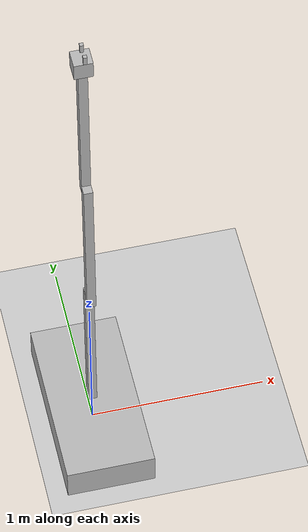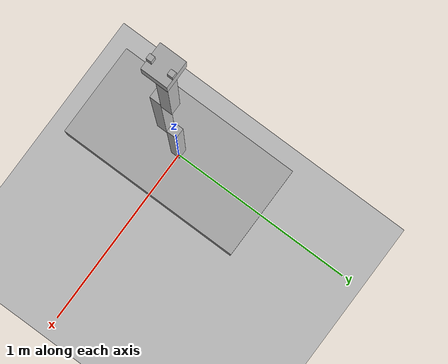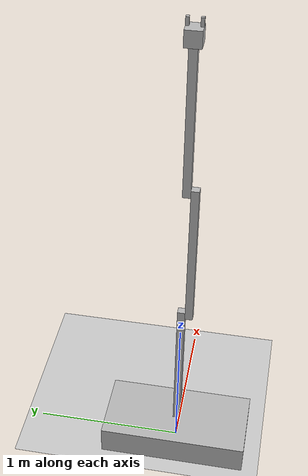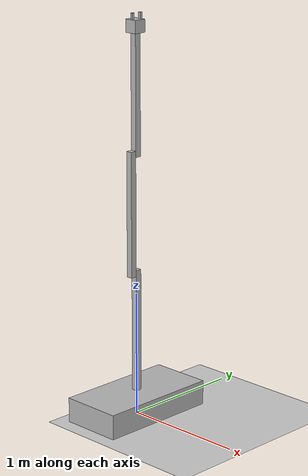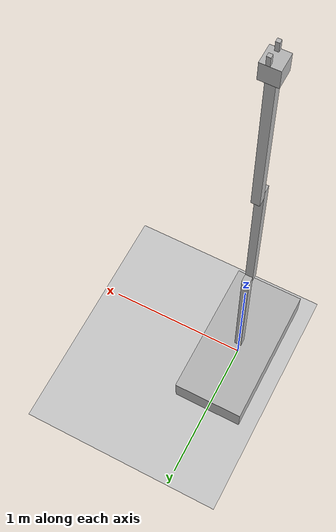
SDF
<sdf version="1.6">
 <world name="default">
  <light name="sun" type="directional">
   <pose>0 0 2 0 0 0</pose>
   <diffuse>0.8 0.8 0.8 1</diffuse>
   <specular>.1 .1 .1 1</specular>
   <attenuation>
    <range>1000</range>
    <linear>0.2</linear>
    <constant>0.8</constant>
    <quadratic>0.001</quadratic>
   </attenuation>
   <direction>-0.5 0.5 -1</direction>
  </light>
  <gravity>0 0 -9.8</gravity>
  <magnetic_field>6e-06 2.3e-05 -4.2e-05</magnetic_field>
  <atmosphere type="adiabatic"/>
  <physics name="default_physics" default="0" type="ode">
   <max_step_size>0.001</max_step_size>
   <real_time_factor>1</real_time_factor>
   <real_time_update_rate>1000</real_time_update_rate>
  </physics>
  <scene><ambient>0.4 0.4 0.4 1</ambient><background>0.7 0.7 0.7 1</background><shadows>1</shadows></scene>
  <spherical_coordinates>
   <surface_model>EARTH_WGS84</surface_model>
   <latitude_deg>0</latitude_deg>
   <longitude_deg>0</longitude_deg>
   <elevation>0</elevation>
   <heading_deg>0</heading_deg>
  </spherical_coordinates>
  <model name="ground_plane">
   <static>1</static>
   <link name="link">
    <collision name="collision">
     <geometry><plane><normal>0 0 1</normal><size>100 100</size></plane></geometry>
     <surface><friction><ode><mu>100</mu><mu2>50</mu2></ode></friction></surface>
    </collision>
    <visual name="visual">
     <cast_shadows>0</cast_shadows>
     <geometry><plane><normal>0 0 1</normal><size>100 100</size></plane></geometry>
     <material>
      <script><uri>file://media/materials/scripts/gazebo.material</uri><name>Gazebo/Grey</name></script>
     </material>
    </visual>
   </link>
  </model>
  <model name="mirobot">
   <self_collide>true</self_collide>
   <link name="base">
    <pose>0 0 0.10 0 0 0</pose>
    <collision name="baseC">
     <inertia><mass>20</mass></inertia>
     <geometry><box><size>0.5 1 0.2</size></box></geometry>
     <surface>
      <contact>
       <ode>
        <soft_cfm>0</soft_cfm>
        <soft_erp>0.2</soft_erp>
        <kp>1e+13</kp>
        <kd>1e+11</kd>
        <max_vel>-1</max_vel>
        <min_depth>0</min_depth>
       </ode>
      </contact>
     </surface>
    </collision>
    <visual name="baseV"><geometry><box><size>0.5 1 0.2</size></box></geometry></visual>
   </link>
   <link name="eslabon1">
    <pose>0 0 0.7 0 0 0</pose>
    <collision name="eslabon1C">
     <geometry><box><size>0.05 0.05 1</size></box></geometry>
     <surface>
      <contact>
       <ode>
        <soft_cfm>0</soft_cfm>
        <soft_erp>0.2</soft_erp>
        <kp>1e+13</kp>
        <kd>1e+11</kd>
        <max_vel>-1</max_vel>
        <min_depth>0</min_depth>
       </ode>
      </contact>
     </surface>
    </collision>
    <visual name="eslabon1C"><geometry><box><size>0.05 0.05 1</size></box></geometry></visual>
   </link>
   <joint name="eslabon1J" type="revolute">
    <pose>0 0 -0.5 0 0 0</pose>
    <parent>base</parent>
    <child>eslabon1</child>
    <axis>
     <dynamics>
      <damping>1</damping>
      <friction>0</friction>
      <spring_reference>0</spring_reference>
      <spring_stiffness>0</spring_stiffness>
     </dynamics>
     <limit><lower>-3.14</lower><upper>3.14</upper></limit>
     <xyz>0 0 1</xyz>
     <use_parent_model_frame>1</use_parent_model_frame>
    </axis>
   </joint>
   <link name="eslabon2">
    <pose>0.0 -0.05 1.65 0 0 0</pose>
    <collision name="eslabon2">
     <geometry><box><size>0.05 0.05 1</size></box></geometry>
     <surface>
      <contact>
       <ode>
        <soft_cfm>0</soft_cfm>
        <soft_erp>0.2</soft_erp>
        <kp>1e+13</kp>
        <kd>1e+11</kd>
        <max_vel>-1</max_vel>
        <min_depth>0</min_depth>
       </ode>
      </contact>
     </surface>
    </collision>
    <visual name="eslabon2"><geometry><box><size>0.05 0.05 1</size></box></geometry></visual>
   </link>
   <joint name="eslabon2J" type="revolute">
    <pose>0 0 -0.475 0 0 0</pose>
    <parent>eslabon1</parent>
    <child>eslabon2</child>
    <axis>
     <dynamics>
      <damping>1</damping>
      <friction>0</friction>
      <spring_reference>0</spring_reference>
      <spring_stiffness>0</spring_stiffness>
     </dynamics>
     <limit><lower>-3.14</lower><upper>3.14</upper></limit>
     <xyz>0 1 0</xyz>
     <use_parent_model_frame>1</use_parent_model_frame>
    </axis>
   </joint>
   <link name="eslabon3">
    <pose>0.0 0.0 2.60 0 0 0</pose>
    <collision name="eslabon3">
     <geometry><box><size>0.05 0.05 1</size></box></geometry>
     <surface>
      <contact>
       <ode>
        <soft_cfm>0</soft_cfm>
        <soft_erp>0.2</soft_erp>
        <kp>1e+13</kp>
        <kd>1e+11</kd>
        <max_vel>-1</max_vel>
        <min_depth>0</min_depth>
       </ode>
      </contact>
     </surface>
    </collision>
    <visual name="eslabon3"><geometry><box><size>0.05 0.05 1</size></box></geometry></visual>
   </link>
   <joint name="eslabon3J" type="revolute">
    <pose>0 0 -0.475 0 0 0</pose>
    <parent>eslabon2</parent>
    <child>eslabon3</child>
    <axis>
     <dynamics>
      <damping>1</damping>
      <friction>0</friction>
      <spring_reference>0</spring_reference>
      <spring_stiffness>0</spring_stiffness>
     </dynamics>
     <limit><lower>-3.14</lower><upper>3.14</upper></limit>
     <xyz>0 1 0</xyz>
     <use_parent_model_frame>1</use_parent_model_frame>
    </axis>
   </joint>
   <link name="mano">
    <pose>0.0 0.0 3.10 0 0 0</pose>
    <collision name="mano">
     <geometry><box><size>0.10 0.10 0.10</size></box></geometry>
     <surface>
      <contact>
       <ode>
        <soft_cfm>0</soft_cfm>
        <soft_erp>0.2</soft_erp>
        <kp>1e+13</kp>
        <kd>1e+11</kd>
        <max_vel>-1</max_vel>
        <min_depth>0</min_depth>
       </ode>
      </contact>
     </surface>
    </collision>
    <visual name="mano"><geometry><box><size>0.1 0.1 0.1</size></box></geometry></visual>
   </link>
   <joint name="muneca" type="revolute">
    <pose>0 0 -0.475 0 0 0</pose>
    <parent>eslabon3</parent>
    <child>mano</child>
    <axis>
     <dynamics>
      <damping>1</damping>
      <friction>0</friction>
      <spring_reference>0</spring_reference>
      <spring_stiffness>0</spring_stiffness>
     </dynamics>
     <limit><lower>-3.14</lower><upper>3.14</upper></limit>
     <xyz>0 0 1</xyz>
     <use_parent_model_frame>1</use_parent_model_frame>
    </axis>
   </joint>
   <link name="dedo1">
    <pose>0.01 0.04 3.175 0 0 0</pose>
    <collision name="dedo1">
     <geometry><box><size>0.10 0.10 0.10</size></box></geometry>
     <surface>
      <contact>
       <ode>
        <soft_cfm>0</soft_cfm>
        <soft_erp>0.2</soft_erp>
        <kp>1e+13</kp>
        <kd>1e+11</kd>
        <max_vel>-1</max_vel>
        <min_depth>0</min_depth>
       </ode>
      </contact>
     </surface>
    </collision>
    <visual name="dedo1"><geometry><box><size>0.02 0.02 0.05</size></box></geometry></visual>
   </link>
   <link name="dedo2">
    <pose>0.01 -0.04 3.175 0 0 0</pose>
    <collision name="dedo2">
     <geometry><box><size>0.10 0.10 0.10</size></box></geometry>
     <surface>
      <contact>
       <ode>
        <soft_cfm>0</soft_cfm>
        <soft_erp>0.2</soft_erp>
        <kp>1e+13</kp>
        <kd>1e+11</kd>
        <max_vel>-1</max_vel>
        <min_depth>0</min_depth>
       </ode>
      </contact>
     </surface>
    </collision>
    <visual name="dedo2"><geometry><box><size>0.02 0.02 0.05</size></box></geometry></visual>
   </link>
   <joint name="dedo1J" type="prismatic">
    <pose>0 0 0.1 0 0 0</pose>
    <parent>mano</parent>
    <child>dedo1</child>
    <axis>
     <dynamics>
      <damping>1</damping>
      <friction>0</friction>
      <spring_reference>0</spring_reference>
      <spring_stiffness>0</spring_stiffness>
     </dynamics>
     <limit><lower>-0</lower><upper>0.05</upper></limit>
     <xyz>0 1 0</xyz>
     <use_parent_model_frame>1</use_parent_model_frame>
    </axis>
   </joint>
   <joint name="dedo2J" type="prismatic">
    <pose>0 0 -0.1 0 0 0</pose>
    <parent>mano</parent>
    <child>dedo1</child>
    <axis>
     <dynamics>
      <damping>1</damping>
      <friction>0</friction>
      <spring_reference>0</spring_reference>
      <spring_stiffness>0</spring_stiffness>
     </dynamics>
     <limit><lower>-0.05</lower><upper>0</upper></limit>
     <xyz>0 1 0</xyz>
     <use_parent_model_frame>1</use_parent_model_frame>
    </axis>
   </joint>
   <plugin name="actuador" filename="libmirobot"/>
  </model>
 </world>
</sdf>
